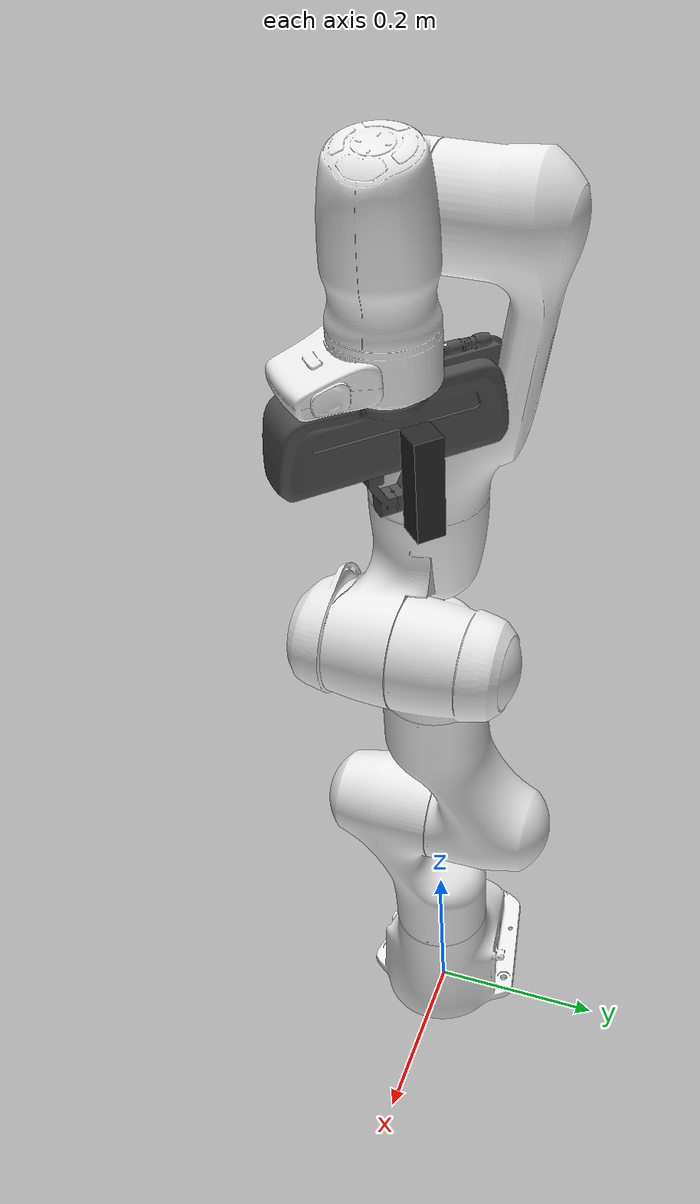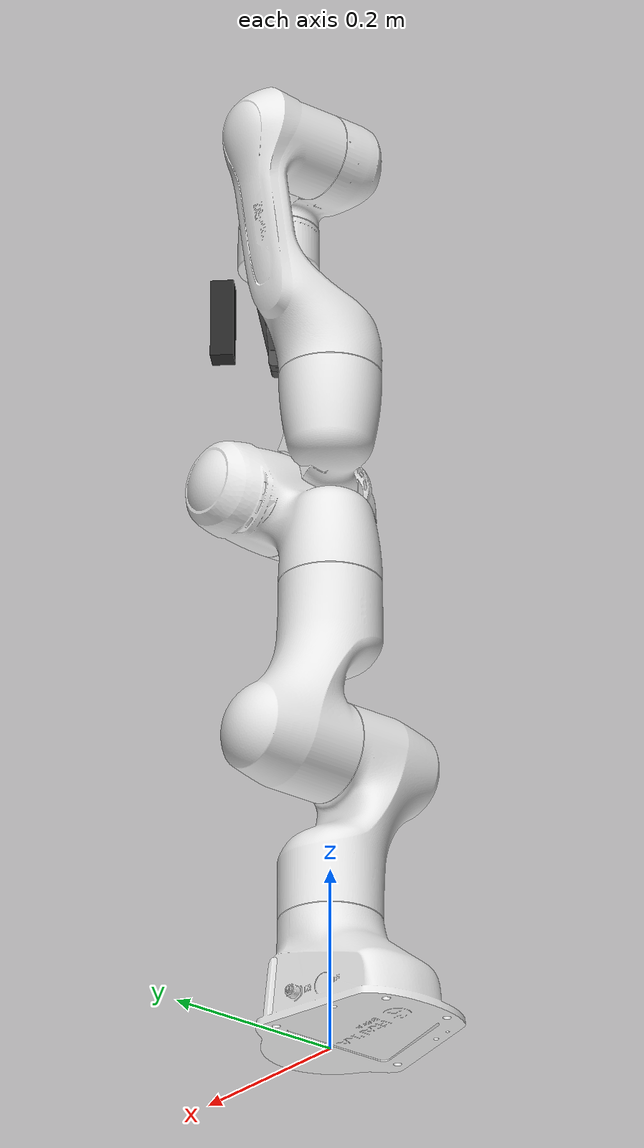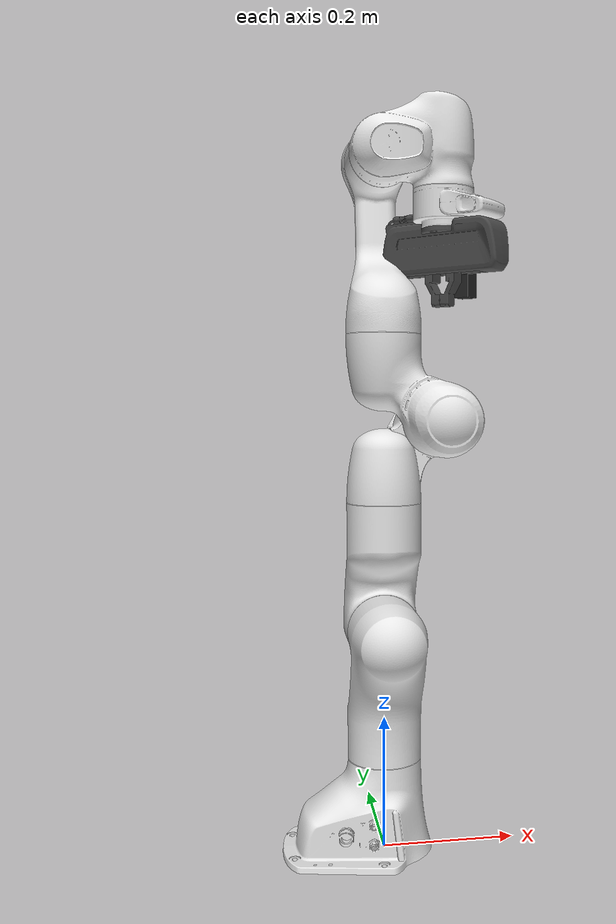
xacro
<?xml version="1.0"?>
<robot xmlns:xacro="http://www.ros.org/wiki/xacro" name="panda">

  <!-- ── Link 0 — base plate ───────────────────────────────────────────── -->
  <link name="panda_link0">
    <visual>
      <geometry>
        <mesh filename="$(find moveit_resources_panda_description)/meshes/visual/link0.dae"/>
      </geometry>
    </visual>
    <collision>
      <geometry>
        <mesh filename="package://moveit_resources_panda_description/meshes/collision/link0.stl"/>
      </geometry>
    </collision>
    <inertial>
      <origin xyz="-0.041018 -0.00014 0.049974"/>
      <mass value="0.629769"/>
      <inertia ixx="3.0e-3" ixy="0" ixz="0"
               iyy="3.0e-3" iyz="0" izz="2.0e-3"/>
    </inertial>
  </link>

  <!-- ── Link 1 ──────────────────────────────────────────────────────────── -->
  <link name="panda_link1">
    <visual>
      <geometry>
        <mesh filename="$(find moveit_resources_panda_description)/meshes/visual/link1.dae"/>
      </geometry>
    </visual>
    <collision>
      <geometry>
        <mesh filename="package://moveit_resources_panda_description/meshes/collision/link1.stl"/>
      </geometry>
    </collision>
    <inertial>
      <origin xyz="0 0 -0.1"/>
      <mass value="4.970684"/>
      <inertia ixx="2.5e-2" ixy="0" ixz="0"
               iyy="2.5e-2" iyz="0" izz="9.0e-3"/>
    </inertial>
  </link>

  <joint name="panda_joint1" type="revolute">
    <safety_controller k_position="100.0" k_velocity="40.0"
                       soft_lower_limit="-2.8973" soft_upper_limit="2.8973"/>
    <origin xyz="0 0 0.333" rpy="0 0 0"/>
    <parent link="panda_link0"/>
    <child  link="panda_link1"/>
    <axis xyz="0 0 1"/>
    <limit effort="87" lower="-2.9671" upper="2.9671" velocity="2.3925"/>
    <dynamics damping="0.5" friction="0.0"/>
  </joint>

  <!-- ── Link 2 ──────────────────────────────────────────────────────────── -->
  <link name="panda_link2">
    <visual>
      <geometry>
        <mesh filename="$(find moveit_resources_panda_description)/meshes/visual/link2.dae"/>
      </geometry>
    </visual>
    <collision>
      <geometry>
        <mesh filename="package://moveit_resources_panda_description/meshes/collision/link2.stl"/>
      </geometry>
    </collision>
    <inertial>
      <origin xyz="0 -0.03 0"/>
      <mass value="0.646926"/>
      <inertia ixx="2.0e-3" ixy="0" ixz="0"
               iyy="1.0e-3" iyz="0" izz="1.5e-3"/>
    </inertial>
  </link>

  <joint name="panda_joint2" type="revolute">
    <safety_controller k_position="100.0" k_velocity="40.0"
                       soft_lower_limit="-1.7628" soft_upper_limit="1.7628"/>
    <origin xyz="0 0 0" rpy="-1.57079632679 0 0"/>
    <parent link="panda_link1"/>
    <child  link="panda_link2"/>
    <axis xyz="0 0 1"/>
    <limit effort="87" lower="-1.8326" upper="1.8326" velocity="2.3925"/>
    <dynamics damping="0.5" friction="0.0"/>
  </joint>

  <!-- ── Link 3 ──────────────────────────────────────────────────────────── -->
  <link name="panda_link3">
    <visual>
      <geometry>
        <mesh filename="$(find moveit_resources_panda_description)/meshes/visual/link3.dae"/>
      </geometry>
    </visual>
    <collision>
      <geometry>
        <mesh filename="package://moveit_resources_panda_description/meshes/collision/link3.stl"/>
      </geometry>
    </collision>
    <inertial>
      <origin xyz="0.04 0.04 -0.07"/>
      <mass value="3.228604"/>
      <inertia ixx="1.0e-2" ixy="0" ixz="0"
               iyy="1.0e-2" iyz="0" izz="6.0e-3"/>
    </inertial>
  </link>

  <joint name="panda_joint3" type="revolute">
    <safety_controller k_position="100.0" k_velocity="40.0"
                       soft_lower_limit="-2.8973" soft_upper_limit="2.8973"/>
    <origin xyz="0 -0.316 0" rpy="1.57079632679 0 0"/>
    <parent link="panda_link2"/>
    <child  link="panda_link3"/>
    <axis xyz="0 0 1"/>
    <limit effort="87" lower="-2.9671" upper="2.9671" velocity="2.3925"/>
    <dynamics damping="0.5" friction="0.0"/>
  </joint>

  <!-- ── Link 4 ──────────────────────────────────────────────────────────── -->
  <link name="panda_link4">
    <visual>
      <geometry>
        <mesh filename="$(find moveit_resources_panda_description)/meshes/visual/link4.dae"/>
      </geometry>
    </visual>
    <collision>
      <geometry>
        <mesh filename="package://moveit_resources_panda_description/meshes/collision/link4.stl"/>
      </geometry>
    </collision>
    <inertial>
      <origin xyz="-0.05 0.10 0.03"/>
      <mass value="3.587895"/>
      <inertia ixx="1.0e-2" ixy="0" ixz="0"
               iyy="1.0e-2" iyz="0" izz="5.0e-3"/>
    </inertial>
  </link>

  <joint name="panda_joint4" type="revolute">
    <safety_controller k_position="100.0" k_velocity="40.0"
                       soft_lower_limit="-3.0718" soft_upper_limit="0.0175"/>
    <origin xyz="0.0825 0 0" rpy="1.57079632679 0 0"/>
    <parent link="panda_link3"/>
    <child  link="panda_link4"/>
    <axis xyz="0 0 1"/>
    <limit effort="87" lower="-3.1416" upper="0.0873" velocity="2.3925"/>
    <dynamics damping="0.5" friction="0.0"/>
  </joint>

  <!-- ── Link 5 ──────────────────────────────────────────────────────────── -->
  <link name="panda_link5">
    <visual>
      <geometry>
        <mesh filename="$(find moveit_resources_panda_description)/meshes/visual/link5.dae"/>
      </geometry>
    </visual>
    <collision>
      <geometry>
        <mesh filename="package://moveit_resources_panda_description/meshes/collision/link5.stl"/>
      </geometry>
    </collision>
    <inertial>
      <origin xyz="-0.01 0.04 -0.04"/>
      <mass value="1.225946"/>
      <inertia ixx="5.0e-3" ixy="0" ixz="0"
               iyy="5.0e-3" iyz="0" izz="1.0e-3"/>
    </inertial>
  </link>

  <joint name="panda_joint5" type="revolute">
    <safety_controller k_position="100.0" k_velocity="40.0"
                       soft_lower_limit="-2.8973" soft_upper_limit="2.8973"/>
    <origin xyz="-0.0825 0.384 0" rpy="-1.57079632679 0 0"/>
    <parent link="panda_link4"/>
    <child  link="panda_link5"/>
    <axis xyz="0 0 1"/>
    <limit effort="12" lower="-2.9671" upper="2.9671" velocity="2.8710"/>
    <dynamics damping="0.5" friction="0.0"/>
  </joint>

  <!-- ── Link 6 ──────────────────────────────────────────────────────────── -->
  <link name="panda_link6">
    <visual>
      <geometry>
        <mesh filename="$(find moveit_resources_panda_description)/meshes/visual/link6.dae"/>
      </geometry>
    </visual>
    <collision>
      <geometry>
        <mesh filename="package://moveit_resources_panda_description/meshes/collision/link6.stl"/>
      </geometry>
    </collision>
    <inertial>
      <origin xyz="0.06 -0.01 -0.01"/>
      <mass value="1.666555"/>
      <inertia ixx="3.0e-3" ixy="0" ixz="0"
               iyy="3.0e-3" iyz="0" izz="2.0e-3"/>
    </inertial>
  </link>

  <joint name="panda_joint6" type="revolute">
    <safety_controller k_position="100.0" k_velocity="40.0"
                       soft_lower_limit="-0.0175" soft_upper_limit="3.7525"/>
    <origin xyz="0 0 0" rpy="1.57079632679 0 0"/>
    <parent link="panda_link5"/>
    <child  link="panda_link6"/>
    <axis xyz="0 0 1"/>
    <limit effort="12" lower="-0.0873" upper="3.8223" velocity="2.8710"/>
    <dynamics damping="0.5" friction="0.0"/>
  </joint>

  <!-- ── Link 7 ──────────────────────────────────────────────────────────── -->
  <link name="panda_link7">
    <visual>
      <geometry>
        <mesh filename="$(find moveit_resources_panda_description)/meshes/visual/link7.dae"/>
      </geometry>
    </visual>
    <collision>
      <geometry>
        <mesh filename="package://moveit_resources_panda_description/meshes/collision/link7.stl"/>
      </geometry>
    </collision>
    <inertial>
      <origin xyz="0.01 -0.004 0.06"/>
      <mass value="0.735522"/>
      <inertia ixx="2.0e-3" ixy="0" ixz="0"
               iyy="2.0e-3" iyz="0" izz="1.5e-3"/>
    </inertial>
  </link>

  <joint name="panda_joint7" type="revolute">
    <safety_controller k_position="100.0" k_velocity="40.0"
                       soft_lower_limit="-2.8973" soft_upper_limit="2.8973"/>
    <origin xyz="0.088 0 0" rpy="1.57079632679 0 0"/>
    <parent link="panda_link6"/>
    <child  link="panda_link7"/>
    <axis xyz="0 0 1"/>
    <limit effort="12" lower="-2.9671" upper="2.9671" velocity="2.8710"/>
    <dynamics damping="0.5" friction="0.0"/>
  </joint>

  <!-- ── Link 8 / flange — fixed, Gazebo welds it ─────────────────────────── -->
  <link name="panda_link8"/>

  <joint name="panda_joint8" type="fixed">
    <origin xyz="0 0 0.107" rpy="0 0 0"/>
    <parent link="panda_link7"/>
    <child  link="panda_link8"/>
  </joint>

  <!-- ── Hand ─────────────────────────────────────────────────────────────── -->
  <joint name="panda_hand_joint" type="fixed">
    <parent link="panda_link8"/>
    <child  link="panda_hand"/>
    <origin xyz="0 0 0" rpy="0 0 -0.785398163397"/>
  </joint>

  <link name="panda_hand">
    <visual>
      <geometry>
        <mesh filename="$(find moveit_resources_panda_description)/meshes/visual/hand.dae"/>
      </geometry>
    </visual>
    <collision>
      <geometry>
        <mesh filename="package://moveit_resources_panda_description/meshes/collision/hand.stl"/>
      </geometry>
    </collision>
    <inertial>
      <origin xyz="0 0 0.04"/>
      <mass value="0.73"/>
      <inertia ixx="1.0e-3" ixy="0" ixz="0"
               iyy="1.0e-3" iyz="0" izz="1.0e-3"/>
    </inertial>
  </link>

  <!-- ── Fingers ───────────────────────────────────────────────────────────── -->
  <link name="panda_leftfinger">
    <visual>
      <geometry>
        <mesh filename="$(find moveit_resources_panda_description)/meshes/visual/finger.dae"/>
      </geometry>
    </visual>
    <collision>
      <geometry>
        <mesh filename="package://moveit_resources_panda_description/meshes/collision/finger.stl"/>
      </geometry>
    </collision>
    <inertial>
      <mass value="0.014"/>
      <inertia ixx="1.0e-4" ixy="0" ixz="0"
               iyy="1.0e-4" iyz="0" izz="1.0e-4"/>
    </inertial>
  </link>

  <link name="panda_rightfinger">
    <visual>
      <origin xyz="0 0 0" rpy="0 0 3.14159265359"/>
      <geometry>
        <mesh filename="$(find moveit_resources_panda_description)/meshes/visual/finger.dae"/>
      </geometry>
    </visual>
    <collision>
      <origin xyz="0 0 0" rpy="0 0 3.14159265359"/>
      <geometry>
        <mesh filename="package://moveit_resources_panda_description/meshes/collision/finger.stl"/>
      </geometry>
    </collision>
    <inertial>
      <mass value="0.014"/>
      <inertia ixx="1.0e-4" ixy="0" ixz="0"
               iyy="1.0e-4" iyz="0" izz="1.0e-4"/>
    </inertial>
  </link>

  <joint name="panda_finger_joint1" type="prismatic">
    <parent link="panda_hand"/>
    <child  link="panda_leftfinger"/>
    <origin xyz="0 0 0.0584" rpy="0 0 0"/>
    <axis xyz="0 1 0"/>
    <limit effort="20" lower="0.0" upper="0.04" velocity="0.2"/>
    <dynamics damping="0.5" friction="0.0"/>
  </joint>

  <joint name="panda_finger_joint2" type="prismatic">
    <parent link="panda_hand"/>
    <child  link="panda_rightfinger"/>
    <origin xyz="0 0 0.0584" rpy="0 0 0"/>
    <axis xyz="0 -1 0"/>
    <limit effort="20" lower="0.0" upper="0.04" velocity="0.2"/>
    <mimic joint="panda_finger_joint1"/>
    <dynamics damping="0.5" friction="0.0"/>
  </joint>

  <!-- ═══════════════════════════════════════════════════════════════════════
       ros2_control: arm (7 DOF)
       ═══════════════════════════════════════════════════════════════════════ -->
  <ros2_control name="PandaGazeboSystem" type="system">
    <hardware>
      <plugin>gazebo_ros2_control/GazeboSystem</plugin>
    </hardware>
    <joint name="panda_joint1">
      <command_interface name="position">
        <param name="min">-2.8973</param>
        <param name="max">2.8973</param>
      </command_interface>
      <state_interface name="position"><param name="initial_value">0.0</param></state_interface>
      <state_interface name="velocity"/>
    </joint>
    <joint name="panda_joint2">
      <command_interface name="position">
        <param name="min">-1.7628</param>
        <param name="max">1.7628</param>
      </command_interface>
      <state_interface name="position"><param name="initial_value">-0.7854</param></state_interface>
      <state_interface name="velocity"/>
    </joint>
    <joint name="panda_joint3">
      <command_interface name="position">
        <param name="min">-2.8973</param>
        <param name="max">2.8973</param>
      </command_interface>
      <state_interface name="position"><param name="initial_value">0.0</param></state_interface>
      <state_interface name="velocity"/>
    </joint>
    <joint name="panda_joint4">
      <command_interface name="position">
        <param name="min">-3.0718</param>
        <param name="max">-0.0698</param>
      </command_interface>
      <state_interface name="position"><param name="initial_value">-2.3562</param></state_interface>
      <state_interface name="velocity"/>
    </joint>
    <joint name="panda_joint5">
      <command_interface name="position">
        <param name="min">-2.8973</param>
        <param name="max">2.8973</param>
      </command_interface>
      <state_interface name="position"><param name="initial_value">0.0</param></state_interface>
      <state_interface name="velocity"/>
    </joint>
    <joint name="panda_joint6">
      <command_interface name="position">
        <param name="min">-0.0175</param>
        <param name="max">3.7525</param>
      </command_interface>
      <state_interface name="position"><param name="initial_value">1.5708</param></state_interface>
      <state_interface name="velocity"/>
    </joint>
    <joint name="panda_joint7">
      <command_interface name="position">
        <param name="min">-2.8973</param>
        <param name="max">2.8973</param>
      </command_interface>
      <state_interface name="position"><param name="initial_value">0.7854</param></state_interface>
      <state_interface name="velocity"/>
    </joint>
  </ros2_control>

  <ros2_control name="PandaHandGazeboSystem" type="system">
    <hardware>
      <plugin>gazebo_ros2_control/GazeboSystem</plugin>
    </hardware>
    <joint name="panda_finger_joint1">
      <command_interface name="position">
        <param name="min">0</param>
        <param name="max">0.04</param>
      </command_interface>
      <state_interface name="position"><param name="initial_value">0.02</param></state_interface>
      <state_interface name="velocity"/>
    </joint>
    <joint name="panda_finger_joint2">
      <command_interface name="position">
        <param name="min">0</param>
        <param name="max">0.04</param>
      </command_interface>
      <state_interface name="position"><param name="initial_value">0.02</param></state_interface>
      <state_interface name="velocity"/>
    </joint>
  </ros2_control>

  <gazebo>
    <plugin filename="libgazebo_ros2_control.so" name="gazebo_ros2_control">
      <robot_sim_type>gazebo_ros2_control/GazeboSystem</robot_sim_type>
      <parameters>$(find vlm_robot_planner_bringup)/config/panda_controllers.yaml</parameters>
      <robot_param>robot_description</robot_param>
      <robot_param_node>robot_state_publisher</robot_param_node>
    </plugin>
  </gazebo>

  <link name="wrist_camera_link">
    <visual>
      <geometry><box size="0.090 0.025 0.025"/></geometry>
      <material name="DarkGrey"><color rgba="0.15 0.15 0.15 1.0"/></material>
    </visual>
    <inertial>
      <mass value="0.072"/>
      <inertia ixx="1e-5" ixy="0" ixz="0" iyy="1e-5" iyz="0" izz="1e-5"/>
    </inertial>
  </link>

  <joint name="wrist_camera_joint" type="fixed">
    <parent link="panda_hand"/>
    <child link="wrist_camera_link"/>
    <origin xyz="0.06 0.0 0.05" rpy="0 ${-pi/2} 0"/>
  </joint>

  <!-- Optical frame: ROS camera convention (z forward, x right) -->
  <link name="wrist_camera_optical_frame"/>
  <joint name="wrist_camera_optical_joint" type="fixed">
    <parent link="wrist_camera_link"/>
    <child link="wrist_camera_optical_frame"/>
    <origin xyz="0 0 0" rpy="${-pi/2} 0 ${-pi/2}"/>
  </joint>

  <gazebo reference="panda_link0"><gravity>false</gravity><material>Gazebo/White</material></gazebo>
  <gazebo reference="panda_link1"><gravity>false</gravity><material>Gazebo/White</material></gazebo>
  <gazebo reference="panda_link2"><gravity>false</gravity><material>Gazebo/White</material></gazebo>
  <gazebo reference="panda_link3"><gravity>false</gravity><material>Gazebo/White</material></gazebo>
  <gazebo reference="panda_link4"><gravity>false</gravity><material>Gazebo/White</material></gazebo>
  <gazebo reference="panda_link5"><gravity>false</gravity><material>Gazebo/White</material></gazebo>
  <gazebo reference="panda_link6"><gravity>false</gravity><material>Gazebo/White</material></gazebo>
  <gazebo reference="panda_link7"><gravity>false</gravity><material>Gazebo/White</material></gazebo>
  <gazebo reference="panda_hand"><gravity>false</gravity><material>Gazebo/DarkGrey</material></gazebo>
  <gazebo reference="panda_leftfinger"><gravity>false</gravity><material>Gazebo/DarkGrey</material></gazebo>
  <gazebo reference="panda_rightfinger"><gravity>false</gravity><material>Gazebo/DarkGrey</material></gazebo>

  <!-- Gazebo camera sensor — publishes /camera/color/image_raw at 30 Hz -->
  <gazebo reference="wrist_camera_link">
    <sensor name="wrist_camera" type="camera">
      <always_on>true</always_on>
      <update_rate>30.0</update_rate>
      <visualize>false</visualize>
      <camera name="wrist_camera">
        <horizontal_fov>1.204</horizontal_fov>  <!-- ~69° RealSense D435i -->
        <image>
          <width>640</width>
          <height>480</height>
          <format>R8G8B8</format>
        </image>
        <clip><near>0.02</near><far>10.0</far></clip>
        <noise><type>gaussian</type><mean>0.0</mean><stddev>0.005</stddev></noise>
      </camera>
      <plugin name="wrist_camera_plugin" filename="libgazebo_ros_camera.so">
        <ros>
          <remapping>~/image_raw:=/camera/color/image_raw</remapping>
          <remapping>~/camera_info:=/camera/color/camera_info</remapping>
        </ros>
        <camera_name>wrist_camera</camera_name>
        <frame_name>wrist_camera_optical_frame</frame_name>
      </plugin>
    </sensor>
  </gazebo>

</robot>
